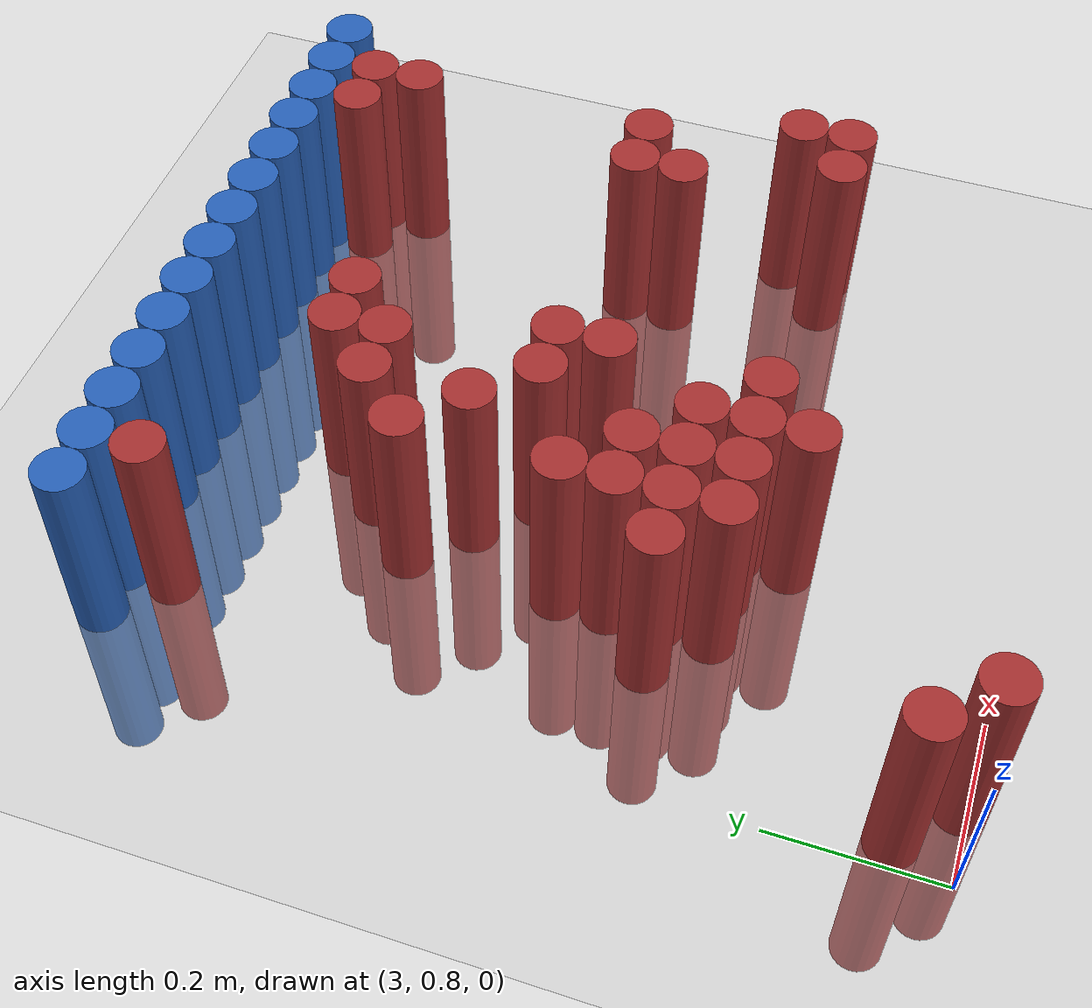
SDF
<sdf version="1.6">
 <world name="default">
  <model name="ground_plane">
   <static>1</static>
   <link name="link">
    <collision name="collision">
     <geometry><plane><normal>0 0 1</normal><size>100 100</size></plane></geometry>
     <surface><friction><ode><mu>100</mu><mu2>50</mu2></ode></friction></surface>
    </collision>
    <visual name="visual">
     <cast_shadows>0</cast_shadows>
     <geometry><plane><normal>0 0 1</normal><size>100 100</size></plane></geometry>
     <material>
      <script><uri>file://media/materials/scripts/gazebo.material</uri><name>Gazebo/Grey</name></script>
     </material>
    </visual>
   </link>
  </model>
  <model name="unit_cylinder_111">
   <static>1</static>
   <pose>3.030000 1.770000 0.000000 0.000000 0.000000 0.000000</pose>
   <link name="link">
    <inertial>
     <mass>1</mass>
     <inertia><ixx>0.145833</ixx><ixy>0</ixy><ixz>0</ixz><iyy>0.145833</iyy><iyz>0</iyz><izz>0.125</izz></inertia>
    </inertial>
    <collision name="collision">
     <geometry><cylinder><radius>0.030000</radius><length>0.5</length></cylinder></geometry>
    </collision>
    <visual name="visual">
     <geometry><cylinder><radius>0.030000</radius><length>0.5</length></cylinder></geometry>
     <material>
      <ambient>0.152000 0.379000 0.720000 1</ambient>
      <diffuse>0.152000 0.379000 0.720000 1</diffuse>
     </material>
     <material>
      <script><name>Gazebo/Grey</name><uri>file://media/materials/scripts/gazebo.material</uri></script>
     </material>
    </visual>
   </link>
  </model>
  <model name="unit_cylinder_112">
   <static>1</static>
   <pose>3.090000 1.770000 0.000000 0.000000 0.000000 0.000000</pose>
   <link name="link">
    <inertial>
     <mass>1</mass>
     <inertia><ixx>0.145833</ixx><ixy>0</ixy><ixz>0</ixz><iyy>0.145833</iyy><iyz>0</iyz><izz>0.125</izz></inertia>
    </inertial>
    <collision name="collision">
     <geometry><cylinder><radius>0.030000</radius><length>0.5</length></cylinder></geometry>
    </collision>
    <visual name="visual">
     <geometry><cylinder><radius>0.030000</radius><length>0.5</length></cylinder></geometry>
     <material>
      <ambient>0.152000 0.379000 0.720000 1</ambient>
      <diffuse>0.152000 0.379000 0.720000 1</diffuse>
     </material>
     <material>
      <script><name>Gazebo/Grey</name><uri>file://media/materials/scripts/gazebo.material</uri></script>
     </material>
    </visual>
   </link>
  </model>
  <model name="unit_cylinder_113">
   <static>1</static>
   <pose>3.150000 1.770000 0.000000 0.000000 0.000000 0.000000</pose>
   <link name="link">
    <inertial>
     <mass>1</mass>
     <inertia><ixx>0.145833</ixx><ixy>0</ixy><ixz>0</ixz><iyy>0.145833</iyy><iyz>0</iyz><izz>0.125</izz></inertia>
    </inertial>
    <collision name="collision">
     <geometry><cylinder><radius>0.030000</radius><length>0.5</length></cylinder></geometry>
    </collision>
    <visual name="visual">
     <geometry><cylinder><radius>0.030000</radius><length>0.5</length></cylinder></geometry>
     <material>
      <ambient>0.152000 0.379000 0.720000 1</ambient>
      <diffuse>0.152000 0.379000 0.720000 1</diffuse>
     </material>
     <material>
      <script><name>Gazebo/Grey</name><uri>file://media/materials/scripts/gazebo.material</uri></script>
     </material>
    </visual>
   </link>
  </model>
  <model name="unit_cylinder_114">
   <static>1</static>
   <pose>3.210000 1.770000 0.000000 0.000000 0.000000 0.000000</pose>
   <link name="link">
    <inertial>
     <mass>1</mass>
     <inertia><ixx>0.145833</ixx><ixy>0</ixy><ixz>0</ixz><iyy>0.145833</iyy><iyz>0</iyz><izz>0.125</izz></inertia>
    </inertial>
    <collision name="collision">
     <geometry><cylinder><radius>0.030000</radius><length>0.5</length></cylinder></geometry>
    </collision>
    <visual name="visual">
     <geometry><cylinder><radius>0.030000</radius><length>0.5</length></cylinder></geometry>
     <material>
      <ambient>0.152000 0.379000 0.720000 1</ambient>
      <diffuse>0.152000 0.379000 0.720000 1</diffuse>
     </material>
     <material>
      <script><name>Gazebo/Grey</name><uri>file://media/materials/scripts/gazebo.material</uri></script>
     </material>
    </visual>
   </link>
  </model>
  <model name="unit_cylinder_115">
   <static>1</static>
   <pose>3.270000 1.770000 0.000000 0.000000 0.000000 0.000000</pose>
   <link name="link">
    <inertial>
     <mass>1</mass>
     <inertia><ixx>0.145833</ixx><ixy>0</ixy><ixz>0</ixz><iyy>0.145833</iyy><iyz>0</iyz><izz>0.125</izz></inertia>
    </inertial>
    <collision name="collision">
     <geometry><cylinder><radius>0.030000</radius><length>0.5</length></cylinder></geometry>
    </collision>
    <visual name="visual">
     <geometry><cylinder><radius>0.030000</radius><length>0.5</length></cylinder></geometry>
     <material>
      <ambient>0.152000 0.379000 0.720000 1</ambient>
      <diffuse>0.152000 0.379000 0.720000 1</diffuse>
     </material>
     <material>
      <script><name>Gazebo/Grey</name><uri>file://media/materials/scripts/gazebo.material</uri></script>
     </material>
    </visual>
   </link>
  </model>
  <model name="unit_cylinder_116">
   <static>1</static>
   <pose>3.330000 1.770000 0.000000 0.000000 0.000000 0.000000</pose>
   <link name="link">
    <inertial>
     <mass>1</mass>
     <inertia><ixx>0.145833</ixx><ixy>0</ixy><ixz>0</ixz><iyy>0.145833</iyy><iyz>0</iyz><izz>0.125</izz></inertia>
    </inertial>
    <collision name="collision">
     <geometry><cylinder><radius>0.030000</radius><length>0.5</length></cylinder></geometry>
    </collision>
    <visual name="visual">
     <geometry><cylinder><radius>0.030000</radius><length>0.5</length></cylinder></geometry>
     <material>
      <ambient>0.152000 0.379000 0.720000 1</ambient>
      <diffuse>0.152000 0.379000 0.720000 1</diffuse>
     </material>
     <material>
      <script><name>Gazebo/Grey</name><uri>file://media/materials/scripts/gazebo.material</uri></script>
     </material>
    </visual>
   </link>
  </model>
  <model name="unit_cylinder_117">
   <static>1</static>
   <pose>3.390000 1.770000 0.000000 0.000000 0.000000 0.000000</pose>
   <link name="link">
    <inertial>
     <mass>1</mass>
     <inertia><ixx>0.145833</ixx><ixy>0</ixy><ixz>0</ixz><iyy>0.145833</iyy><iyz>0</iyz><izz>0.125</izz></inertia>
    </inertial>
    <collision name="collision">
     <geometry><cylinder><radius>0.030000</radius><length>0.5</length></cylinder></geometry>
    </collision>
    <visual name="visual">
     <geometry><cylinder><radius>0.030000</radius><length>0.5</length></cylinder></geometry>
     <material>
      <ambient>0.152000 0.379000 0.720000 1</ambient>
      <diffuse>0.152000 0.379000 0.720000 1</diffuse>
     </material>
     <material>
      <script><name>Gazebo/Grey</name><uri>file://media/materials/scripts/gazebo.material</uri></script>
     </material>
    </visual>
   </link>
  </model>
  <model name="unit_cylinder_118">
   <static>1</static>
   <pose>3.450000 1.770000 0.000000 0.000000 0.000000 0.000000</pose>
   <link name="link">
    <inertial>
     <mass>1</mass>
     <inertia><ixx>0.145833</ixx><ixy>0</ixy><ixz>0</ixz><iyy>0.145833</iyy><iyz>0</iyz><izz>0.125</izz></inertia>
    </inertial>
    <collision name="collision">
     <geometry><cylinder><radius>0.030000</radius><length>0.5</length></cylinder></geometry>
    </collision>
    <visual name="visual">
     <geometry><cylinder><radius>0.030000</radius><length>0.5</length></cylinder></geometry>
     <material>
      <ambient>0.152000 0.379000 0.720000 1</ambient>
      <diffuse>0.152000 0.379000 0.720000 1</diffuse>
     </material>
     <material>
      <script><name>Gazebo/Grey</name><uri>file://media/materials/scripts/gazebo.material</uri></script>
     </material>
    </visual>
   </link>
  </model>
  <model name="unit_cylinder_119">
   <static>1</static>
   <pose>3.510000 1.770000 0.000000 0.000000 0.000000 0.000000</pose>
   <link name="link">
    <inertial>
     <mass>1</mass>
     <inertia><ixx>0.145833</ixx><ixy>0</ixy><ixz>0</ixz><iyy>0.145833</iyy><iyz>0</iyz><izz>0.125</izz></inertia>
    </inertial>
    <collision name="collision">
     <geometry><cylinder><radius>0.030000</radius><length>0.5</length></cylinder></geometry>
    </collision>
    <visual name="visual">
     <geometry><cylinder><radius>0.030000</radius><length>0.5</length></cylinder></geometry>
     <material>
      <ambient>0.152000 0.379000 0.720000 1</ambient>
      <diffuse>0.152000 0.379000 0.720000 1</diffuse>
     </material>
     <material>
      <script><name>Gazebo/Grey</name><uri>file://media/materials/scripts/gazebo.material</uri></script>
     </material>
    </visual>
   </link>
  </model>
  <model name="unit_cylinder_120">
   <static>1</static>
   <pose>3.570000 1.770000 0.000000 0.000000 0.000000 0.000000</pose>
   <link name="link">
    <inertial>
     <mass>1</mass>
     <inertia><ixx>0.145833</ixx><ixy>0</ixy><ixz>0</ixz><iyy>0.145833</iyy><iyz>0</iyz><izz>0.125</izz></inertia>
    </inertial>
    <collision name="collision">
     <geometry><cylinder><radius>0.030000</radius><length>0.5</length></cylinder></geometry>
    </collision>
    <visual name="visual">
     <geometry><cylinder><radius>0.030000</radius><length>0.5</length></cylinder></geometry>
     <material>
      <ambient>0.152000 0.379000 0.720000 1</ambient>
      <diffuse>0.152000 0.379000 0.720000 1</diffuse>
     </material>
     <material>
      <script><name>Gazebo/Grey</name><uri>file://media/materials/scripts/gazebo.material</uri></script>
     </material>
    </visual>
   </link>
  </model>
  <model name="unit_cylinder_121">
   <static>1</static>
   <pose>3.630000 1.770000 0.000000 0.000000 0.000000 0.000000</pose>
   <link name="link">
    <inertial>
     <mass>1</mass>
     <inertia><ixx>0.145833</ixx><ixy>0</ixy><ixz>0</ixz><iyy>0.145833</iyy><iyz>0</iyz><izz>0.125</izz></inertia>
    </inertial>
    <collision name="collision">
     <geometry><cylinder><radius>0.030000</radius><length>0.5</length></cylinder></geometry>
    </collision>
    <visual name="visual">
     <geometry><cylinder><radius>0.030000</radius><length>0.5</length></cylinder></geometry>
     <material>
      <ambient>0.152000 0.379000 0.720000 1</ambient>
      <diffuse>0.152000 0.379000 0.720000 1</diffuse>
     </material>
     <material>
      <script><name>Gazebo/Grey</name><uri>file://media/materials/scripts/gazebo.material</uri></script>
     </material>
    </visual>
   </link>
  </model>
  <model name="unit_cylinder_122">
   <static>1</static>
   <pose>3.690000 1.770000 0.000000 0.000000 0.000000 0.000000</pose>
   <link name="link">
    <inertial>
     <mass>1</mass>
     <inertia><ixx>0.145833</ixx><ixy>0</ixy><ixz>0</ixz><iyy>0.145833</iyy><iyz>0</iyz><izz>0.125</izz></inertia>
    </inertial>
    <collision name="collision">
     <geometry><cylinder><radius>0.030000</radius><length>0.5</length></cylinder></geometry>
    </collision>
    <visual name="visual">
     <geometry><cylinder><radius>0.030000</radius><length>0.5</length></cylinder></geometry>
     <material>
      <ambient>0.152000 0.379000 0.720000 1</ambient>
      <diffuse>0.152000 0.379000 0.720000 1</diffuse>
     </material>
     <material>
      <script><name>Gazebo/Grey</name><uri>file://media/materials/scripts/gazebo.material</uri></script>
     </material>
    </visual>
   </link>
  </model>
  <model name="unit_cylinder_123">
   <static>1</static>
   <pose>3.750000 1.770000 0.000000 0.000000 0.000000 0.000000</pose>
   <link name="link">
    <inertial>
     <mass>1</mass>
     <inertia><ixx>0.145833</ixx><ixy>0</ixy><ixz>0</ixz><iyy>0.145833</iyy><iyz>0</iyz><izz>0.125</izz></inertia>
    </inertial>
    <collision name="collision">
     <geometry><cylinder><radius>0.030000</radius><length>0.5</length></cylinder></geometry>
    </collision>
    <visual name="visual">
     <geometry><cylinder><radius>0.030000</radius><length>0.5</length></cylinder></geometry>
     <material>
      <ambient>0.152000 0.379000 0.720000 1</ambient>
      <diffuse>0.152000 0.379000 0.720000 1</diffuse>
     </material>
     <material>
      <script><name>Gazebo/Grey</name><uri>file://media/materials/scripts/gazebo.material</uri></script>
     </material>
    </visual>
   </link>
  </model>
  <model name="unit_cylinder_124">
   <static>1</static>
   <pose>3.810000 1.770000 0.000000 0.000000 0.000000 0.000000</pose>
   <link name="link">
    <inertial>
     <mass>1</mass>
     <inertia><ixx>0.145833</ixx><ixy>0</ixy><ixz>0</ixz><iyy>0.145833</iyy><iyz>0</iyz><izz>0.125</izz></inertia>
    </inertial>
    <collision name="collision">
     <geometry><cylinder><radius>0.030000</radius><length>0.5</length></cylinder></geometry>
    </collision>
    <visual name="visual">
     <geometry><cylinder><radius>0.030000</radius><length>0.5</length></cylinder></geometry>
     <material>
      <ambient>0.152000 0.379000 0.720000 1</ambient>
      <diffuse>0.152000 0.379000 0.720000 1</diffuse>
     </material>
     <material>
      <script><name>Gazebo/Grey</name><uri>file://media/materials/scripts/gazebo.material</uri></script>
     </material>
    </visual>
   </link>
  </model>
  <model name="unit_cylinder_136">
   <static>1</static>
   <pose>3.090000 1.710000 0.000000 0.000000 0.000000 0.000000</pose>
   <link name="link">
    <inertial>
     <mass>1</mass>
     <inertia><ixx>0.145833</ixx><ixy>0</ixy><ixz>0</ixz><iyy>0.145833</iyy><iyz>0</iyz><izz>0.125</izz></inertia>
    </inertial>
    <collision name="collision">
     <geometry><cylinder><radius>0.030000</radius><length>0.5</length></cylinder></geometry>
    </collision>
    <visual name="visual">
     <geometry><cylinder><radius>0.030000</radius><length>0.5</length></cylinder></geometry>
     <material>
      <ambient>0.648000 0.192000 0.192000 1</ambient>
      <diffuse>0.648000 0.192000 0.192000 1</diffuse>
     </material>
     <material>
      <script><name>Gazebo/Grey</name><uri>file://media/materials/scripts/gazebo.material</uri></script>
     </material>
    </visual>
   </link>
  </model>
  <model name="unit_cylinder_137">
   <static>1</static>
   <pose>3.690000 1.710000 0.000000 0.000000 0.000000 0.000000</pose>
   <link name="link">
    <inertial>
     <mass>1</mass>
     <inertia><ixx>0.145833</ixx><ixy>0</ixy><ixz>0</ixz><iyy>0.145833</iyy><iyz>0</iyz><izz>0.125</izz></inertia>
    </inertial>
    <collision name="collision">
     <geometry><cylinder><radius>0.030000</radius><length>0.5</length></cylinder></geometry>
    </collision>
    <visual name="visual">
     <geometry><cylinder><radius>0.030000</radius><length>0.5</length></cylinder></geometry>
     <material>
      <ambient>0.648000 0.192000 0.192000 1</ambient>
      <diffuse>0.648000 0.192000 0.192000 1</diffuse>
     </material>
     <material>
      <script><name>Gazebo/Grey</name><uri>file://media/materials/scripts/gazebo.material</uri></script>
     </material>
    </visual>
   </link>
  </model>
  <model name="unit_cylinder_138">
   <static>1</static>
   <pose>3.750000 1.710000 0.000000 0.000000 0.000000 0.000000</pose>
   <link name="link">
    <inertial>
     <mass>1</mass>
     <inertia><ixx>0.145833</ixx><ixy>0</ixy><ixz>0</ixz><iyy>0.145833</iyy><iyz>0</iyz><izz>0.125</izz></inertia>
    </inertial>
    <collision name="collision">
     <geometry><cylinder><radius>0.030000</radius><length>0.5</length></cylinder></geometry>
    </collision>
    <visual name="visual">
     <geometry><cylinder><radius>0.030000</radius><length>0.5</length></cylinder></geometry>
     <material>
      <ambient>0.648000 0.192000 0.192000 1</ambient>
      <diffuse>0.648000 0.192000 0.192000 1</diffuse>
     </material>
     <material>
      <script><name>Gazebo/Grey</name><uri>file://media/materials/scripts/gazebo.material</uri></script>
     </material>
    </visual>
   </link>
  </model>
  <model name="unit_cylinder_143">
   <static>1</static>
   <pose>3.750000 1.650000 0.000000 0.000000 0.000000 0.000000</pose>
   <link name="link">
    <inertial>
     <mass>1</mass>
     <inertia><ixx>0.145833</ixx><ixy>0</ixy><ixz>0</ixz><iyy>0.145833</iyy><iyz>0</iyz><izz>0.125</izz></inertia>
    </inertial>
    <collision name="collision">
     <geometry><cylinder><radius>0.030000</radius><length>0.5</length></cylinder></geometry>
    </collision>
    <visual name="visual">
     <geometry><cylinder><radius>0.030000</radius><length>0.5</length></cylinder></geometry>
     <material>
      <ambient>0.648000 0.192000 0.192000 1</ambient>
      <diffuse>0.648000 0.192000 0.192000 1</diffuse>
     </material>
     <material>
      <script><name>Gazebo/Grey</name><uri>file://media/materials/scripts/gazebo.material</uri></script>
     </material>
    </visual>
   </link>
  </model>
  <model name="unit_cylinder_144">
   <static>1</static>
   <pose>3.330000 1.590000 0.000000 0.000000 0.000000 0.000000</pose>
   <link name="link">
    <inertial>
     <mass>1</mass>
     <inertia><ixx>0.145833</ixx><ixy>0</ixy><ixz>0</ixz><iyy>0.145833</iyy><iyz>0</iyz><izz>0.125</izz></inertia>
    </inertial>
    <collision name="collision">
     <geometry><cylinder><radius>0.030000</radius><length>0.5</length></cylinder></geometry>
    </collision>
    <visual name="visual">
     <geometry><cylinder><radius>0.030000</radius><length>0.5</length></cylinder></geometry>
     <material>
      <ambient>0.648000 0.192000 0.192000 1</ambient>
      <diffuse>0.648000 0.192000 0.192000 1</diffuse>
     </material>
     <material>
      <script><name>Gazebo/Grey</name><uri>file://media/materials/scripts/gazebo.material</uri></script>
     </material>
    </visual>
   </link>
  </model>
  <model name="unit_cylinder_145">
   <static>1</static>
   <pose>3.390000 1.590000 0.000000 0.000000 0.000000 0.000000</pose>
   <link name="link">
    <inertial>
     <mass>1</mass>
     <inertia><ixx>0.145833</ixx><ixy>0</ixy><ixz>0</ixz><iyy>0.145833</iyy><iyz>0</iyz><izz>0.125</izz></inertia>
    </inertial>
    <collision name="collision">
     <geometry><cylinder><radius>0.030000</radius><length>0.5</length></cylinder></geometry>
    </collision>
    <visual name="visual">
     <geometry><cylinder><radius>0.030000</radius><length>0.5</length></cylinder></geometry>
     <material>
      <ambient>0.648000 0.192000 0.192000 1</ambient>
      <diffuse>0.648000 0.192000 0.192000 1</diffuse>
     </material>
     <material>
      <script><name>Gazebo/Grey</name><uri>file://media/materials/scripts/gazebo.material</uri></script>
     </material>
    </visual>
   </link>
  </model>
  <model name="unit_cylinder_150">
   <static>1</static>
   <pose>3.270000 1.530000 0.000000 0.000000 0.000000 0.000000</pose>
   <link name="link">
    <inertial>
     <mass>1</mass>
     <inertia><ixx>0.145833</ixx><ixy>0</ixy><ixz>0</ixz><iyy>0.145833</iyy><iyz>0</iyz><izz>0.125</izz></inertia>
    </inertial>
    <collision name="collision">
     <geometry><cylinder><radius>0.030000</radius><length>0.5</length></cylinder></geometry>
    </collision>
    <visual name="visual">
     <geometry><cylinder><radius>0.030000</radius><length>0.5</length></cylinder></geometry>
     <material>
      <ambient>0.648000 0.192000 0.192000 1</ambient>
      <diffuse>0.648000 0.192000 0.192000 1</diffuse>
     </material>
     <material>
      <script><name>Gazebo/Grey</name><uri>file://media/materials/scripts/gazebo.material</uri></script>
     </material>
    </visual>
   </link>
  </model>
  <model name="unit_cylinder_151">
   <static>1</static>
   <pose>3.330000 1.530000 0.000000 0.000000 0.000000 0.000000</pose>
   <link name="link">
    <inertial>
     <mass>1</mass>
     <inertia><ixx>0.145833</ixx><ixy>0</ixy><ixz>0</ixz><iyy>0.145833</iyy><iyz>0</iyz><izz>0.125</izz></inertia>
    </inertial>
    <collision name="collision">
     <geometry><cylinder><radius>0.030000</radius><length>0.5</length></cylinder></geometry>
    </collision>
    <visual name="visual">
     <geometry><cylinder><radius>0.030000</radius><length>0.5</length></cylinder></geometry>
     <material>
      <ambient>0.648000 0.192000 0.192000 1</ambient>
      <diffuse>0.648000 0.192000 0.192000 1</diffuse>
     </material>
     <material>
      <script><name>Gazebo/Grey</name><uri>file://media/materials/scripts/gazebo.material</uri></script>
     </material>
    </visual>
   </link>
  </model>
  <model name="unit_cylinder_158">
   <static>1</static>
   <pose>3.210000 1.470000 0.000000 0.000000 0.000000 0.000000</pose>
   <link name="link">
    <inertial>
     <mass>1</mass>
     <inertia><ixx>0.145833</ixx><ixy>0</ixy><ixz>0</ixz><iyy>0.145833</iyy><iyz>0</iyz><izz>0.125</izz></inertia>
    </inertial>
    <collision name="collision">
     <geometry><cylinder><radius>0.030000</radius><length>0.5</length></cylinder></geometry>
    </collision>
    <visual name="visual">
     <geometry><cylinder><radius>0.030000</radius><length>0.5</length></cylinder></geometry>
     <material>
      <ambient>0.648000 0.192000 0.192000 1</ambient>
      <diffuse>0.648000 0.192000 0.192000 1</diffuse>
     </material>
     <material>
      <script><name>Gazebo/Grey</name><uri>file://media/materials/scripts/gazebo.material</uri></script>
     </material>
    </visual>
   </link>
  </model>
  <model name="unit_cylinder_162">
   <static>1</static>
   <pose>3.270000 1.410000 0.000000 0.000000 0.000000 0.000000</pose>
   <link name="link">
    <inertial>
     <mass>1</mass>
     <inertia><ixx>0.145833</ixx><ixy>0</ixy><ixz>0</ixz><iyy>0.145833</iyy><iyz>0</iyz><izz>0.125</izz></inertia>
    </inertial>
    <collision name="collision">
     <geometry><cylinder><radius>0.030000</radius><length>0.5</length></cylinder></geometry>
    </collision>
    <visual name="visual">
     <geometry><cylinder><radius>0.030000</radius><length>0.5</length></cylinder></geometry>
     <material>
      <ambient>0.648000 0.192000 0.192000 1</ambient>
      <diffuse>0.648000 0.192000 0.192000 1</diffuse>
     </material>
     <material>
      <script><name>Gazebo/Grey</name><uri>file://media/materials/scripts/gazebo.material</uri></script>
     </material>
    </visual>
   </link>
  </model>
  <model name="unit_cylinder_165">
   <static>1</static>
   <pose>3.330000 1.350000 0.000000 0.000000 0.000000 0.000000</pose>
   <link name="link">
    <inertial>
     <mass>1</mass>
     <inertia><ixx>0.145833</ixx><ixy>0</ixy><ixz>0</ixz><iyy>0.145833</iyy><iyz>0</iyz><izz>0.125</izz></inertia>
    </inertial>
    <collision name="collision">
     <geometry><cylinder><radius>0.030000</radius><length>0.5</length></cylinder></geometry>
    </collision>
    <visual name="visual">
     <geometry><cylinder><radius>0.030000</radius><length>0.5</length></cylinder></geometry>
     <material>
      <ambient>0.648000 0.192000 0.192000 1</ambient>
      <diffuse>0.648000 0.192000 0.192000 1</diffuse>
     </material>
     <material>
      <script><name>Gazebo/Grey</name><uri>file://media/materials/scripts/gazebo.material</uri></script>
     </material>
    </visual>
   </link>
  </model>
  <model name="unit_cylinder_166">
   <static>1</static>
   <pose>3.390000 1.350000 0.000000 0.000000 0.000000 0.000000</pose>
   <link name="link">
    <inertial>
     <mass>1</mass>
     <inertia><ixx>0.145833</ixx><ixy>0</ixy><ixz>0</ixz><iyy>0.145833</iyy><iyz>0</iyz><izz>0.125</izz></inertia>
    </inertial>
    <collision name="collision">
     <geometry><cylinder><radius>0.030000</radius><length>0.5</length></cylinder></geometry>
    </collision>
    <visual name="visual">
     <geometry><cylinder><radius>0.030000</radius><length>0.5</length></cylinder></geometry>
     <material>
      <ambient>0.648000 0.192000 0.192000 1</ambient>
      <diffuse>0.648000 0.192000 0.192000 1</diffuse>
     </material>
     <material>
      <script><name>Gazebo/Grey</name><uri>file://media/materials/scripts/gazebo.material</uri></script>
     </material>
    </visual>
   </link>
  </model>
  <model name="unit_cylinder_167">
   <static>1</static>
   <pose>3.690000 1.350000 0.000000 0.000000 0.000000 0.000000</pose>
   <link name="link">
    <inertial>
     <mass>1</mass>
     <inertia><ixx>0.145833</ixx><ixy>0</ixy><ixz>0</ixz><iyy>0.145833</iyy><iyz>0</iyz><izz>0.125</izz></inertia>
    </inertial>
    <collision name="collision">
     <geometry><cylinder><radius>0.030000</radius><length>0.5</length></cylinder></geometry>
    </collision>
    <visual name="visual">
     <geometry><cylinder><radius>0.030000</radius><length>0.5</length></cylinder></geometry>
     <material>
      <ambient>0.648000 0.192000 0.192000 1</ambient>
      <diffuse>0.648000 0.192000 0.192000 1</diffuse>
     </material>
     <material>
      <script><name>Gazebo/Grey</name><uri>file://media/materials/scripts/gazebo.material</uri></script>
     </material>
    </visual>
   </link>
  </model>
  <model name="unit_cylinder_168">
   <static>1</static>
   <pose>3.750000 1.350000 0.000000 0.000000 0.000000 0.000000</pose>
   <link name="link">
    <inertial>
     <mass>1</mass>
     <inertia><ixx>0.145833</ixx><ixy>0</ixy><ixz>0</ixz><iyy>0.145833</iyy><iyz>0</iyz><izz>0.125</izz></inertia>
    </inertial>
    <collision name="collision">
     <geometry><cylinder><radius>0.030000</radius><length>0.5</length></cylinder></geometry>
    </collision>
    <visual name="visual">
     <geometry><cylinder><radius>0.030000</radius><length>0.5</length></cylinder></geometry>
     <material>
      <ambient>0.648000 0.192000 0.192000 1</ambient>
      <diffuse>0.648000 0.192000 0.192000 1</diffuse>
     </material>
     <material>
      <script><name>Gazebo/Grey</name><uri>file://media/materials/scripts/gazebo.material</uri></script>
     </material>
    </visual>
   </link>
  </model>
  <model name="unit_cylinder_170">
   <static>1</static>
   <pose>3.210000 1.290000 0.000000 0.000000 0.000000 0.000000</pose>
   <link name="link">
    <inertial>
     <mass>1</mass>
     <inertia><ixx>0.145833</ixx><ixy>0</ixy><ixz>0</ixz><iyy>0.145833</iyy><iyz>0</iyz><izz>0.125</izz></inertia>
    </inertial>
    <collision name="collision">
     <geometry><cylinder><radius>0.030000</radius><length>0.5</length></cylinder></geometry>
    </collision>
    <visual name="visual">
     <geometry><cylinder><radius>0.030000</radius><length>0.5</length></cylinder></geometry>
     <material>
      <ambient>0.648000 0.192000 0.192000 1</ambient>
      <diffuse>0.648000 0.192000 0.192000 1</diffuse>
     </material>
     <material>
      <script><name>Gazebo/Grey</name><uri>file://media/materials/scripts/gazebo.material</uri></script>
     </material>
    </visual>
   </link>
  </model>
  <model name="unit_cylinder_171">
   <static>1</static>
   <pose>3.390000 1.290000 0.000000 0.000000 0.000000 0.000000</pose>
   <link name="link">
    <inertial>
     <mass>1</mass>
     <inertia><ixx>0.145833</ixx><ixy>0</ixy><ixz>0</ixz><iyy>0.145833</iyy><iyz>0</iyz><izz>0.125</izz></inertia>
    </inertial>
    <collision name="collision">
     <geometry><cylinder><radius>0.030000</radius><length>0.5</length></cylinder></geometry>
    </collision>
    <visual name="visual">
     <geometry><cylinder><radius>0.030000</radius><length>0.5</length></cylinder></geometry>
     <material>
      <ambient>0.648000 0.192000 0.192000 1</ambient>
      <diffuse>0.648000 0.192000 0.192000 1</diffuse>
     </material>
     <material>
      <script><name>Gazebo/Grey</name><uri>file://media/materials/scripts/gazebo.material</uri></script>
     </material>
    </visual>
   </link>
  </model>
  <model name="unit_cylinder_172">
   <static>1</static>
   <pose>3.690000 1.290000 0.000000 0.000000 0.000000 0.000000</pose>
   <link name="link">
    <inertial>
     <mass>1</mass>
     <inertia><ixx>0.145833</ixx><ixy>0</ixy><ixz>0</ixz><iyy>0.145833</iyy><iyz>0</iyz><izz>0.125</izz></inertia>
    </inertial>
    <collision name="collision">
     <geometry><cylinder><radius>0.030000</radius><length>0.5</length></cylinder></geometry>
    </collision>
    <visual name="visual">
     <geometry><cylinder><radius>0.030000</radius><length>0.5</length></cylinder></geometry>
     <material>
      <ambient>0.648000 0.192000 0.192000 1</ambient>
      <diffuse>0.648000 0.192000 0.192000 1</diffuse>
     </material>
     <material>
      <script><name>Gazebo/Grey</name><uri>file://media/materials/scripts/gazebo.material</uri></script>
     </material>
    </visual>
   </link>
  </model>
  <model name="unit_cylinder_177">
   <static>1</static>
   <pose>3.210000 1.230000 0.000000 0.000000 0.000000 0.000000</pose>
   <link name="link">
    <inertial>
     <mass>1</mass>
     <inertia><ixx>0.145833</ixx><ixy>0</ixy><ixz>0</ixz><iyy>0.145833</iyy><iyz>0</iyz><izz>0.125</izz></inertia>
    </inertial>
    <collision name="collision">
     <geometry><cylinder><radius>0.030000</radius><length>0.5</length></cylinder></geometry>
    </collision>
    <visual name="visual">
     <geometry><cylinder><radius>0.030000</radius><length>0.5</length></cylinder></geometry>
     <material>
      <ambient>0.648000 0.192000 0.192000 1</ambient>
      <diffuse>0.648000 0.192000 0.192000 1</diffuse>
     </material>
     <material>
      <script><name>Gazebo/Grey</name><uri>file://media/materials/scripts/gazebo.material</uri></script>
     </material>
    </visual>
   </link>
  </model>
  <model name="unit_cylinder_178">
   <static>1</static>
   <pose>3.270000 1.230000 0.000000 0.000000 0.000000 0.000000</pose>
   <link name="link">
    <inertial>
     <mass>1</mass>
     <inertia><ixx>0.145833</ixx><ixy>0</ixy><ixz>0</ixz><iyy>0.145833</iyy><iyz>0</iyz><izz>0.125</izz></inertia>
    </inertial>
    <collision name="collision">
     <geometry><cylinder><radius>0.030000</radius><length>0.5</length></cylinder></geometry>
    </collision>
    <visual name="visual">
     <geometry><cylinder><radius>0.030000</radius><length>0.5</length></cylinder></geometry>
     <material>
      <ambient>0.648000 0.192000 0.192000 1</ambient>
      <diffuse>0.648000 0.192000 0.192000 1</diffuse>
     </material>
     <material>
      <script><name>Gazebo/Grey</name><uri>file://media/materials/scripts/gazebo.material</uri></script>
     </material>
    </visual>
   </link>
  </model>
  <model name="unit_cylinder_184">
   <static>1</static>
   <pose>3.150000 1.170000 0.000000 0.000000 0.000000 0.000000</pose>
   <link name="link">
    <inertial>
     <mass>1</mass>
     <inertia><ixx>0.145833</ixx><ixy>0</ixy><ixz>0</ixz><iyy>0.145833</iyy><iyz>0</iyz><izz>0.125</izz></inertia>
    </inertial>
    <collision name="collision">
     <geometry><cylinder><radius>0.030000</radius><length>0.5</length></cylinder></geometry>
    </collision>
    <visual name="visual">
     <geometry><cylinder><radius>0.030000</radius><length>0.5</length></cylinder></geometry>
     <material>
      <ambient>0.648000 0.192000 0.192000 1</ambient>
      <diffuse>0.648000 0.192000 0.192000 1</diffuse>
     </material>
     <material>
      <script><name>Gazebo/Grey</name><uri>file://media/materials/scripts/gazebo.material</uri></script>
     </material>
    </visual>
   </link>
  </model>
  <model name="unit_cylinder_185">
   <static>1</static>
   <pose>3.210000 1.170000 0.000000 0.000000 0.000000 0.000000</pose>
   <link name="link">
    <inertial>
     <mass>1</mass>
     <inertia><ixx>0.145833</ixx><ixy>0</ixy><ixz>0</ixz><iyy>0.145833</iyy><iyz>0</iyz><izz>0.125</izz></inertia>
    </inertial>
    <collision name="collision">
     <geometry><cylinder><radius>0.030000</radius><length>0.5</length></cylinder></geometry>
    </collision>
    <visual name="visual">
     <geometry><cylinder><radius>0.030000</radius><length>0.5</length></cylinder></geometry>
     <material>
      <ambient>0.648000 0.192000 0.192000 1</ambient>
      <diffuse>0.648000 0.192000 0.192000 1</diffuse>
     </material>
     <material>
      <script><name>Gazebo/Grey</name><uri>file://media/materials/scripts/gazebo.material</uri></script>
     </material>
    </visual>
   </link>
  </model>
  <model name="unit_cylinder_186">
   <static>1</static>
   <pose>3.270000 1.170000 0.000000 0.000000 0.000000 0.000000</pose>
   <link name="link">
    <inertial>
     <mass>1</mass>
     <inertia><ixx>0.145833</ixx><ixy>0</ixy><ixz>0</ixz><iyy>0.145833</iyy><iyz>0</iyz><izz>0.125</izz></inertia>
    </inertial>
    <collision name="collision">
     <geometry><cylinder><radius>0.030000</radius><length>0.5</length></cylinder></geometry>
    </collision>
    <visual name="visual">
     <geometry><cylinder><radius>0.030000</radius><length>0.5</length></cylinder></geometry>
     <material>
      <ambient>0.648000 0.192000 0.192000 1</ambient>
      <diffuse>0.648000 0.192000 0.192000 1</diffuse>
     </material>
     <material>
      <script><name>Gazebo/Grey</name><uri>file://media/materials/scripts/gazebo.material</uri></script>
     </material>
    </visual>
   </link>
  </model>
  <model name="unit_cylinder_187">
   <static>1</static>
   <pose>3.330000 1.170000 0.000000 0.000000 0.000000 0.000000</pose>
   <link name="link">
    <inertial>
     <mass>1</mass>
     <inertia><ixx>0.145833</ixx><ixy>0</ixy><ixz>0</ixz><iyy>0.145833</iyy><iyz>0</iyz><izz>0.125</izz></inertia>
    </inertial>
    <collision name="collision">
     <geometry><cylinder><radius>0.030000</radius><length>0.5</length></cylinder></geometry>
    </collision>
    <visual name="visual">
     <geometry><cylinder><radius>0.030000</radius><length>0.5</length></cylinder></geometry>
     <material>
      <ambient>0.648000 0.192000 0.192000 1</ambient>
      <diffuse>0.648000 0.192000 0.192000 1</diffuse>
     </material>
     <material>
      <script><name>Gazebo/Grey</name><uri>file://media/materials/scripts/gazebo.material</uri></script>
     </material>
    </visual>
   </link>
  </model>
  <model name="unit_cylinder_188">
   <static>1</static>
   <pose>3.810000 1.170000 0.000000 0.000000 0.000000 0.000000</pose>
   <link name="link">
    <inertial>
     <mass>1</mass>
     <inertia><ixx>0.145833</ixx><ixy>0</ixy><ixz>0</ixz><iyy>0.145833</iyy><iyz>0</iyz><izz>0.125</izz></inertia>
    </inertial>
    <collision name="collision">
     <geometry><cylinder><radius>0.030000</radius><length>0.5</length></cylinder></geometry>
    </collision>
    <visual name="visual">
     <geometry><cylinder><radius>0.030000</radius><length>0.5</length></cylinder></geometry>
     <material>
      <ambient>0.648000 0.192000 0.192000 1</ambient>
      <diffuse>0.648000 0.192000 0.192000 1</diffuse>
     </material>
     <material>
      <script><name>Gazebo/Grey</name><uri>file://media/materials/scripts/gazebo.material</uri></script>
     </material>
    </visual>
   </link>
  </model>
  <model name="unit_cylinder_192">
   <static>1</static>
   <pose>3.210000 1.110000 0.000000 0.000000 0.000000 0.000000</pose>
   <link name="link">
    <inertial>
     <mass>1</mass>
     <inertia><ixx>0.145833</ixx><ixy>0</ixy><ixz>0</ixz><iyy>0.145833</iyy><iyz>0</iyz><izz>0.125</izz></inertia>
    </inertial>
    <collision name="collision">
     <geometry><cylinder><radius>0.030000</radius><length>0.5</length></cylinder></geometry>
    </collision>
    <visual name="visual">
     <geometry><cylinder><radius>0.030000</radius><length>0.5</length></cylinder></geometry>
     <material>
      <ambient>0.648000 0.192000 0.192000 1</ambient>
      <diffuse>0.648000 0.192000 0.192000 1</diffuse>
     </material>
     <material>
      <script><name>Gazebo/Grey</name><uri>file://media/materials/scripts/gazebo.material</uri></script>
     </material>
    </visual>
   </link>
  </model>
  <model name="unit_cylinder_193">
   <static>1</static>
   <pose>3.270000 1.110000 0.000000 0.000000 0.000000 0.000000</pose>
   <link name="link">
    <inertial>
     <mass>1</mass>
     <inertia><ixx>0.145833</ixx><ixy>0</ixy><ixz>0</ixz><iyy>0.145833</iyy><iyz>0</iyz><izz>0.125</izz></inertia>
    </inertial>
    <collision name="collision">
     <geometry><cylinder><radius>0.030000</radius><length>0.5</length></cylinder></geometry>
    </collision>
    <visual name="visual">
     <geometry><cylinder><radius>0.030000</radius><length>0.5</length></cylinder></geometry>
     <material>
      <ambient>0.648000 0.192000 0.192000 1</ambient>
      <diffuse>0.648000 0.192000 0.192000 1</diffuse>
     </material>
     <material>
      <script><name>Gazebo/Grey</name><uri>file://media/materials/scripts/gazebo.material</uri></script>
     </material>
    </visual>
   </link>
  </model>
  <model name="unit_cylinder_194">
   <static>1</static>
   <pose>3.330000 1.110000 0.000000 0.000000 0.000000 0.000000</pose>
   <link name="link">
    <inertial>
     <mass>1</mass>
     <inertia><ixx>0.145833</ixx><ixy>0</ixy><ixz>0</ixz><iyy>0.145833</iyy><iyz>0</iyz><izz>0.125</izz></inertia>
    </inertial>
    <collision name="collision">
     <geometry><cylinder><radius>0.030000</radius><length>0.5</length></cylinder></geometry>
    </collision>
    <visual name="visual">
     <geometry><cylinder><radius>0.030000</radius><length>0.5</length></cylinder></geometry>
     <material>
      <ambient>0.648000 0.192000 0.192000 1</ambient>
      <diffuse>0.648000 0.192000 0.192000 1</diffuse>
     </material>
     <material>
      <script><name>Gazebo/Grey</name><uri>file://media/materials/scripts/gazebo.material</uri></script>
     </material>
    </visual>
   </link>
  </model>
  <model name="unit_cylinder_195">
   <static>1</static>
   <pose>3.390000 1.110000 0.000000 0.000000 0.000000 0.000000</pose>
   <link name="link">
    <inertial>
     <mass>1</mass>
     <inertia><ixx>0.145833</ixx><ixy>0</ixy><ixz>0</ixz><iyy>0.145833</iyy><iyz>0</iyz><izz>0.125</izz></inertia>
    </inertial>
    <collision name="collision">
     <geometry><cylinder><radius>0.030000</radius><length>0.5</length></cylinder></geometry>
    </collision>
    <visual name="visual">
     <geometry><cylinder><radius>0.030000</radius><length>0.5</length></cylinder></geometry>
     <material>
      <ambient>0.648000 0.192000 0.192000 1</ambient>
      <diffuse>0.648000 0.192000 0.192000 1</diffuse>
     </material>
     <material>
      <script><name>Gazebo/Grey</name><uri>file://media/materials/scripts/gazebo.material</uri></script>
     </material>
    </visual>
   </link>
  </model>
  <model name="unit_cylinder_196">
   <static>1</static>
   <pose>3.750000 1.110000 0.000000 0.000000 0.000000 0.000000</pose>
   <link name="link">
    <inertial>
     <mass>1</mass>
     <inertia><ixx>0.145833</ixx><ixy>0</ixy><ixz>0</ixz><iyy>0.145833</iyy><iyz>0</iyz><izz>0.125</izz></inertia>
    </inertial>
    <collision name="collision">
     <geometry><cylinder><radius>0.030000</radius><length>0.5</length></cylinder></geometry>
    </collision>
    <visual name="visual">
     <geometry><cylinder><radius>0.030000</radius><length>0.5</length></cylinder></geometry>
     <material>
      <ambient>0.648000 0.192000 0.192000 1</ambient>
      <diffuse>0.648000 0.192000 0.192000 1</diffuse>
     </material>
     <material>
      <script><name>Gazebo/Grey</name><uri>file://media/materials/scripts/gazebo.material</uri></script>
     </material>
    </visual>
   </link>
  </model>
  <model name="unit_cylinder_197">
   <static>1</static>
   <pose>3.810000 1.110000 0.000000 0.000000 0.000000 0.000000</pose>
   <link name="link">
    <inertial>
     <mass>1</mass>
     <inertia><ixx>0.145833</ixx><ixy>0</ixy><ixz>0</ixz><iyy>0.145833</iyy><iyz>0</iyz><izz>0.125</izz></inertia>
    </inertial>
    <collision name="collision">
     <geometry><cylinder><radius>0.030000</radius><length>0.5</length></cylinder></geometry>
    </collision>
    <visual name="visual">
     <geometry><cylinder><radius>0.030000</radius><length>0.5</length></cylinder></geometry>
     <material>
      <ambient>0.648000 0.192000 0.192000 1</ambient>
      <diffuse>0.648000 0.192000 0.192000 1</diffuse>
     </material>
     <material>
      <script><name>Gazebo/Grey</name><uri>file://media/materials/scripts/gazebo.material</uri></script>
     </material>
    </visual>
   </link>
  </model>
  <model name="unit_cylinder_201">
   <static>1</static>
   <pose>3.330000 1.050000 0.000000 0.000000 0.000000 0.000000</pose>
   <link name="link">
    <inertial>
     <mass>1</mass>
     <inertia><ixx>0.145833</ixx><ixy>0</ixy><ixz>0</ixz><iyy>0.145833</iyy><iyz>0</iyz><izz>0.125</izz></inertia>
    </inertial>
    <collision name="collision">
     <geometry><cylinder><radius>0.030000</radius><length>0.5</length></cylinder></geometry>
    </collision>
    <visual name="visual">
     <geometry><cylinder><radius>0.030000</radius><length>0.5</length></cylinder></geometry>
     <material>
      <ambient>0.648000 0.192000 0.192000 1</ambient>
      <diffuse>0.648000 0.192000 0.192000 1</diffuse>
     </material>
     <material>
      <script><name>Gazebo/Grey</name><uri>file://media/materials/scripts/gazebo.material</uri></script>
     </material>
    </visual>
   </link>
  </model>
  <model name="unit_cylinder_212">
   <static>1</static>
   <pose>3.030000 0.870000 0.000000 0.000000 0.000000 0.000000</pose>
   <link name="link">
    <inertial>
     <mass>1</mass>
     <inertia><ixx>0.145833</ixx><ixy>0</ixy><ixz>0</ixz><iyy>0.145833</iyy><iyz>0</iyz><izz>0.125</izz></inertia>
    </inertial>
    <collision name="collision">
     <geometry><cylinder><radius>0.030000</radius><length>0.5</length></cylinder></geometry>
    </collision>
    <visual name="visual">
     <geometry><cylinder><radius>0.030000</radius><length>0.5</length></cylinder></geometry>
     <material>
      <ambient>0.648000 0.192000 0.192000 1</ambient>
      <diffuse>0.648000 0.192000 0.192000 1</diffuse>
     </material>
     <material>
      <script><name>Gazebo/Grey</name><uri>file://media/materials/scripts/gazebo.material</uri></script>
     </material>
    </visual>
   </link>
  </model>
  <model name="unit_cylinder_218">
   <static>1</static>
   <pose>3.090000 0.810000 0.000000 0.000000 0.000000 0.000000</pose>
   <link name="link">
    <inertial>
     <mass>1</mass>
     <inertia><ixx>0.145833</ixx><ixy>0</ixy><ixz>0</ixz><iyy>0.145833</iyy><iyz>0</iyz><izz>0.125</izz></inertia>
    </inertial>
    <collision name="collision">
     <geometry><cylinder><radius>0.030000</radius><length>0.5</length></cylinder></geometry>
    </collision>
    <visual name="visual">
     <geometry><cylinder><radius>0.030000</radius><length>0.5</length></cylinder></geometry>
     <material>
      <ambient>0.648000 0.192000 0.192000 1</ambient>
      <diffuse>0.648000 0.192000 0.192000 1</diffuse>
     </material>
     <material>
      <script><name>Gazebo/Grey</name><uri>file://media/materials/scripts/gazebo.material</uri></script>
     </material>
    </visual>
   </link>
  </model>
 </world>
</sdf>
